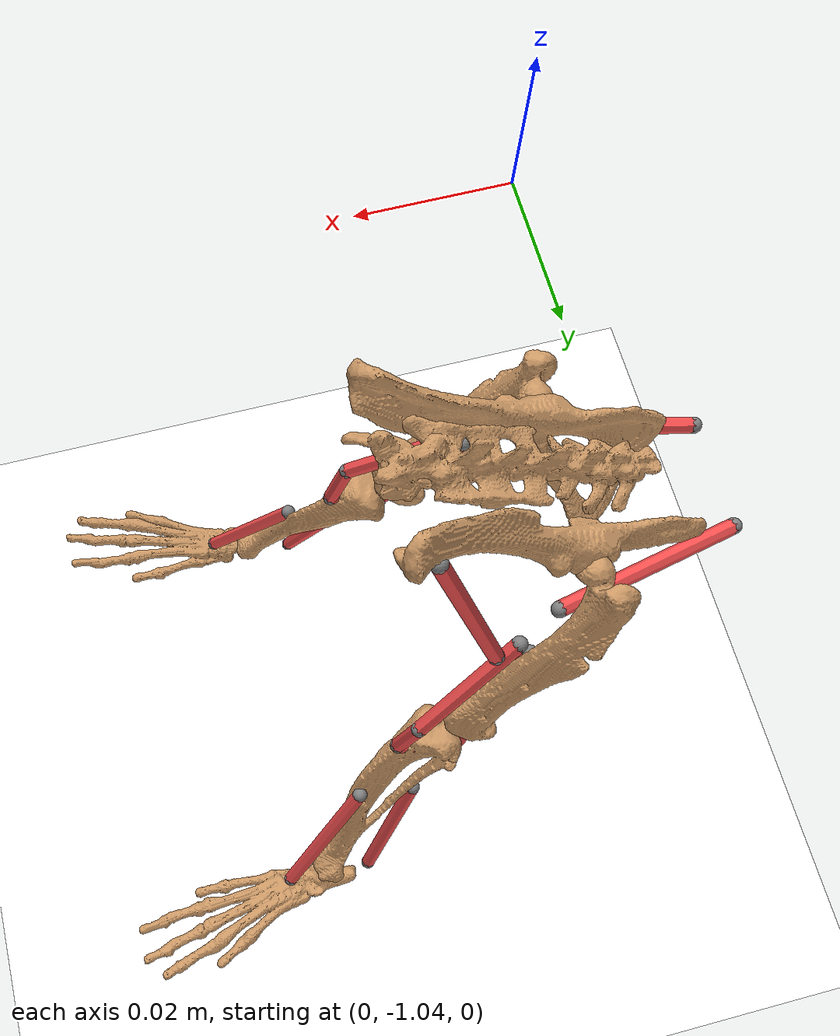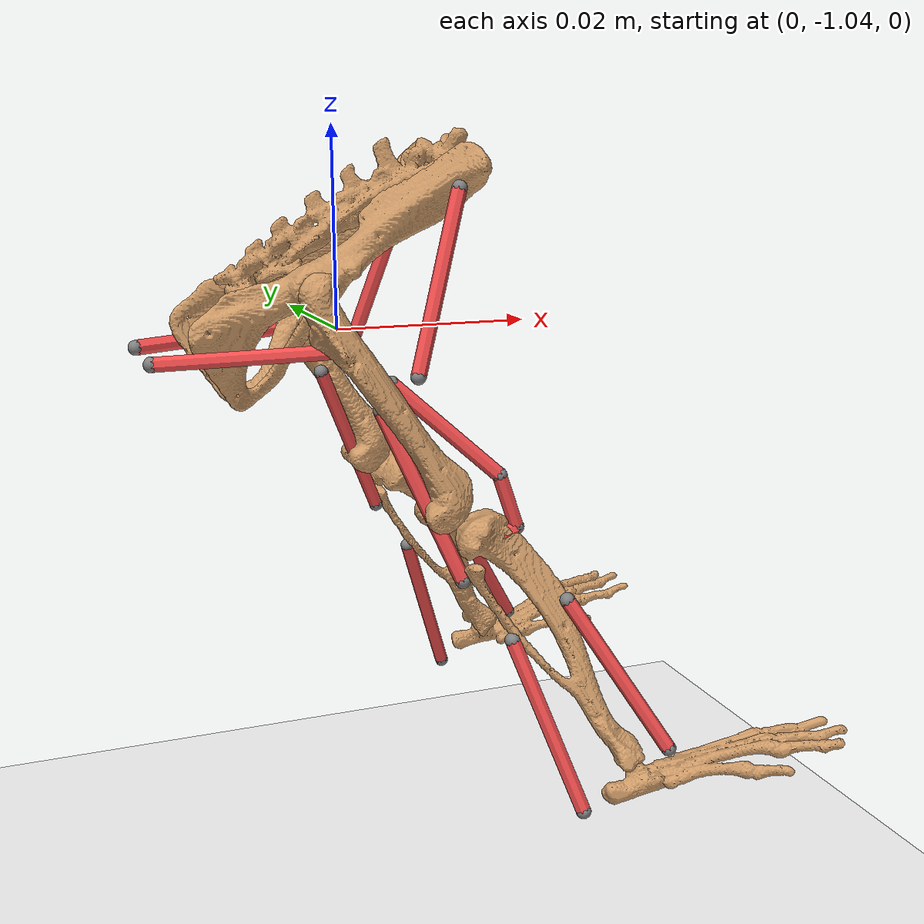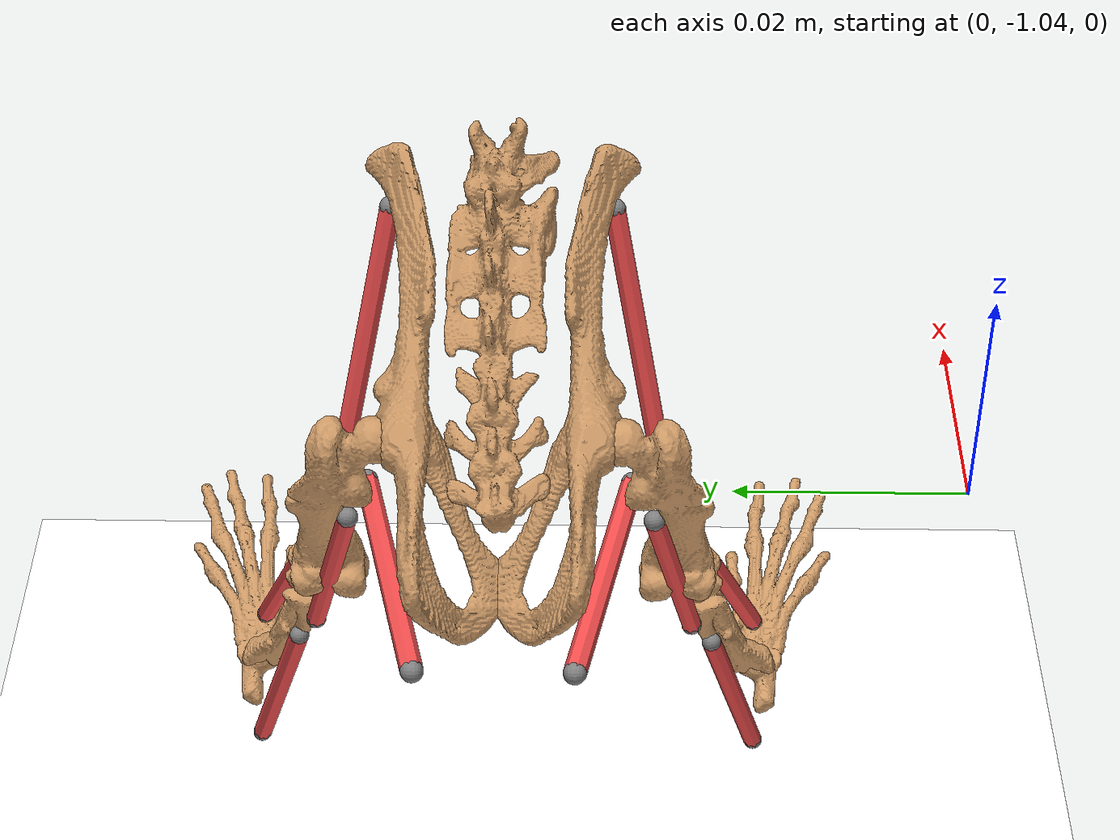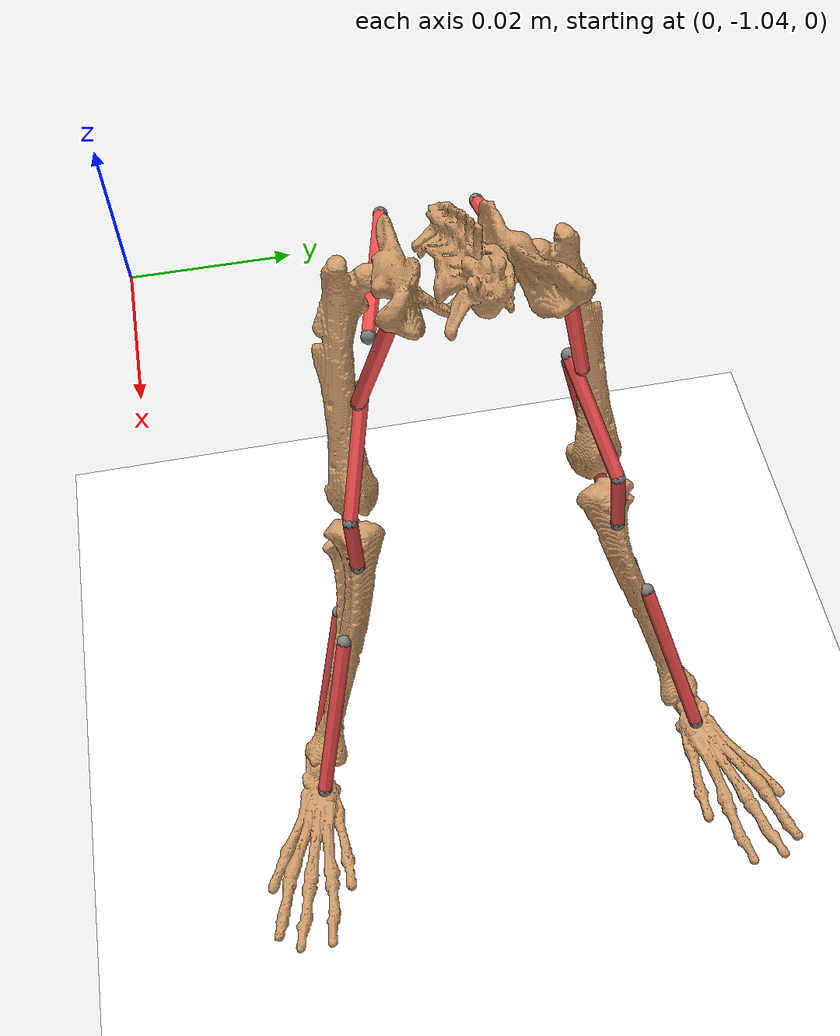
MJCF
<?xml version="1.0" encoding="utf-8"?>
<mujoco model="Rat Hindlimb Right">
  <compiler inertiafromgeom="auto" angle="radian" balanceinertia="true" boundmass="0.001" boundinertia="0.001">
    <lengthrange inttotal="50" useexisting="true"></lengthrange>
  </compiler>
  <default>
    <joint limited="true" damping="0.5" armature="0.1" stiffness="2"></joint>
    <geom rgba="0.8 0.6 .4 1" margin="0.001"></geom>
    <site size="0.001"></site>
    <tendon width="0.001" rgba=".95 .3 .3 1" limited="false"></tendon>
    <default class="muscle">
      <muscle ctrllimited="true" ctrlrange="0 1" ></muscle>
    </default>
    <default class="motor">
      <general gainprm="5 0 0 0 0 0 0 0 0 0"></general>
    </default>
  </default>
  <size njmax="1000" nconmax="400" nuser_jnt="1"></size>
  <worldbody>
    <geom name="floor" pos="0 0 -0.09" size="10 10 0.125" type="plane" material="MatPlane" rgba="1 1 1 1" condim="3" friction="-10 0.005 0.0001"></geom>
    <camera name="for_video" pos="0.1 -1.4 0.02" xyaxes="1 0 0 0 1 3"/>

    <body name="spine" pos="       0     -1.0 0" quat="0.6830126 0.6830126 -0.1830131 0.1830131">
      <joint name="hip_flx_translation1" type="slide" pos="0 0 0" axis="       1        0        0" limited="true" range="-1 1" ref="0" damping="0" stiffness="0" armature="0"></joint>
      <joint name="hip_flx_translation2" type="slide" pos="0 0 0" axis="       0       1        0" limited="true" range="-0.04 0.1" ref="0" damping="0" stiffness="0" armature="0"></joint>
      <joint name="hip_flx_translation3" type="slide" pos="0 0 0" axis="       0       0       1 " limited="true" range="-0.04 1.5" ref="0" damping="0" stiffness="0" armature="0"></joint>
      <joint name="hip_flx_rot" type="hinge" pos="0 0 0" axis="       0       0       1 " limited="true" range="-0.4 0.0" ref="0" damping="0" stiffness="0" armature="0"></joint>
      <light mode="trackcom" directional="false" pos="0 0 4.0" dir="0 0 -1"></light>
      <geom name="spine" type="mesh" mesh="spine"></geom>
      <inertial pos="       0        0        0" mass="0.01" fullinertia=" 4.8e-06  4.8e-06  4.8e-06        0        0        0"></inertial>

      <body name="L_pelvis" pos="  0.005   -0.003     -0.01" quat=" 0.0 0 0.707108 0  ">
        <geom name="L_pelvis" type="mesh" mesh="L_pelvis"></geom>
        <inertial pos="       0        0        0" mass="0.0159" fullinertia="   4e-06  3.5e-06  3.5e-06        0        0        0"></inertial>
        <site name="L_Hip_ext1" pos="0.021056  0.0028983  -0.003217"></site>
        <site name="L_Hip_flx1" pos="-0.022092 0.0013009 0.000"></site>

        <body name="L_femur" pos=" 0 0 -0" quat="0.9914448 -0.1305265 0 0">
          <geom name="L_femur" type="mesh" mesh="L_femur"></geom>
          <inertial pos="       0   -0.015        0" mass="0.014141" fullinertia="1.62e-06  2.5e-07 1.62e-06        0        0        0"></inertial>
          <site name="L_Hip_ext2" pos="0.000552  -0.007969  -0.0001961"></site>
          <site name="L_Hip_flx2" pos="-0.004624 -.01523 0.000701"></site>
          <site name="L_Knee_ext1" pos="-0.00145392895126  -0.014089113889328  0" />
          <site name="L_Knee_ext2" pos="-0.00645392895126  -0.031089113889328  0" />
          <site name="L_Knee_ext3" pos="-0.005  -0.038089113889328  -0.002" />
          <site name="L_Knee_flx1" pos="0.00145392895126  -0.016089113889328  0.00" />
          <joint name="L_hip_flx" type="hinge" pos="0 0 0" axis="       0        0        1" limited="true" range="-1.072665  1.22173" ref="0"></joint>

          <body name="L_tibia" pos="  -0.0001    -0.07251  -0.0015" quat="1.0 0.0 0.0 0.0">
            <geom name="L_tibia" type="mesh" mesh="L_tibia"></geom>
            <inertial pos="       0    0.015        0" mass="0.003338" fullinertia="1.62e-06  2.5e-07 1.62e-06        0        0        0"></inertial>
            <site name="L_Knee_ext4" pos="-0.002   0.034856932063886  0" />
            <site name="L_Knee_flx2" pos="0.004505339894322   0.032856932063886  0.0" />

            <site name="L_Ankle_ext1" pos="0.003505339894322   0.022856932063886  0.0" />
            <site name="L_Ankle_flx1" pos="-0.0052505339894322   0.022856932063886  0.0" />
            <joint name="L_knee_flx" type="hinge" pos="0.003 0.038 0" axis="       0        0        -1" limited="true" range="-2.0 -1.0" ref="0"></joint>

            <body name="L_foot" pos="       0        0        0" quat="1.0 0.0 0.0 0.0">
              <geom name="L_foot" type="mesh" mesh="L_foot" friction="-10 0.005 0.0001"></geom>
              <inertial pos="   0.007   -0.005        0" mass="0.001571" fullinertia=" 2.5e-07 1.62e-06 1.62e-06        0        0        0"></inertial>

              <site name="L_Ankle_ext2" pos=" 0.008177772979046  -0.001076102178830  -0.000251508702143" />
              <site name="L_Ankle_flx2" pos="-0.005604146904590  -0.001287973765483  0.0" />
              <joint name="L_ankle_flx" type="hinge" pos="0 0 0" axis="       0        0        -1" limited="true" range="0.2   1.4" ref="0"></joint>
            </body>

          </body>

        </body>
      </body>

      <body name="R_pelvis" pos="   0.005   -0.003     0.01" quat="1.0 0.0 0.0 0.0">
        <geom name="R_pelvis" type="mesh" mesh="R_pelvis"></geom>
        <inertial pos="       0        0        0" mass="0.0159" fullinertia="   4e-06  3.5e-06  3.5e-06        0        0        0"></inertial>

        <site name="R_Hip_ext1" pos="-0.021056  0.0028983  -0.003217"></site>
        <site name="R_Hip_flx1" pos="0.022092 0.0013009 0.000"></site>

        <body name="R_femur" pos="       0        0        0" quat="0.9914448 -0.1305265 0 0">
          <geom name="R_femur" type="mesh" mesh="R_femur"></geom>
          <inertial pos="       0   -0.015        0" mass="0.014141" fullinertia="1.62e-06  2.5e-07 1.62e-06        0        0        0"></inertial>
          <site name="R_Hip_ext2" pos="-0.000552  -0.007969  -0.0001961"></site>
          <site name="R_Hip_flx2" pos=".004624 -.01523 0.000701"></site>

          <site name="R_Knee_ext1" pos="0.00145392895126  -0.014089113889328  0" />
          <site name="R_Knee_ext2" pos="0.00645392895126  -0.031089113889328  0" />
          <site name="R_Knee_ext3" pos="0.005  -0.038089113889328  -0.002" />

          <site name="R_Knee_flx1" pos="-0.00145392895126  -0.016089113889328  0.00" />
          <joint name="R_hip_flx" type="hinge" pos="0 0 0" axis="       0        0        -1" limited="true" range="-1.072665  1.22173" ref="0"></joint>

          <body name="R_tibia" pos="  -0.0001    -0.07251  -0.0015" quat="1.0 0.0 0.0 0.0">
            <geom name="R_tibia" type="mesh" mesh="R_tibia"></geom>
            <inertial pos="       0    0.015        0" mass="0.003338" fullinertia="1.62e-06  2.5e-07 1.62e-06        0        0        0"></inertial>

            <site name="R_Knee_ext4" pos="0.002   0.034856932063886  0" />
            <site name="R_Knee_flx2" pos="-0.004505339894322   0.032856932063886  0.0" />
            <site name="R_Ankle_ext1" pos="-0.003505339894322   0.022856932063886  0.0" />
            <site name="R_Ankle_flx1" pos="0.0052505339894322   0.022856932063886  0.0" />
            <joint name="R_knee_flx" type="hinge" pos="-0.003 0.038 0" axis="       0        0        1" limited="true" range="-2.0 -1.0" ref="0"></joint>

            <body name="R_foot" pos="       0        0        0" quat="1.0 0.0 0.0 0.0">
              <geom name="R_foot" type="mesh" mesh="R_foot" friction="-10 0.005 0.0001"></geom>
              <inertial pos="   0.007   -0.005        0" mass="0.001571" fullinertia=" 2.5e-07 1.62e-06 1.62e-06        0        0        0"></inertial>
              <site name="R_Ankle_ext2" pos=" -0.008177772979046  -0.001076102178830  -0.000251508702143" />
              <site name="R_Ankle_flx2" pos="0.005604146904590  -0.001287973765483  0.0" />
              <joint name="R_ankle_flx" type="hinge" pos="0 0 0" axis="       0        0        1" limited="true" range="0.2   1.4" ref="0"></joint>
            </body>

          </body>

        </body>

      </body>

    </body>

    <camera name="for_testing" pos="0 0 0" euler="0 0 0"></camera>
  </worldbody>

  <asset>
    <mesh name="spine" file="Geometry/spine.stl" scale="       1        1        1"></mesh>
    <mesh name="R_pelvis" file="Geometry/pelvis.stl" scale="       1        1        1"></mesh>
    <mesh name="R_femur" file="Geometry/femur.stl" scale="       1        1        1"></mesh>
    <mesh name="R_tibia" file="Geometry/tibia.stl" scale="       1        1        1"></mesh>
    <mesh name="R_foot" file="Geometry/foot.stl" scale="       1        1        1"></mesh>
    <mesh name="L_pelvis" file="Geometry/pelvis.stl" scale="       -1        1        1"></mesh>
    <mesh name="L_femur" file="Geometry/femur.stl" scale="       -1        1        1"></mesh>
    <mesh name="L_tibia" file="Geometry/tibia.stl" scale="       -1        1        1"></mesh>
    <mesh name="L_foot" file="Geometry/foot.stl" scale="       -1        1        1"></mesh>

    <texture name="texplane" type="2d" builtin="checker" rgb1=".8 .8 .8" rgb2=".6 .6 .6" width="100" height="100"></texture>
    <material name="MatPlane" reflectance="0.0" texture="texplane" texrepeat="15 15" texuniform="true"></material>
    <texture type="skybox" builtin="gradient" rgb1="1 1 1" rgb2="1 1 1" width="256" height="256" />
  </asset>

  <tendon>
    <spatial name="R_hip_Ext_tendon">
      <site site="R_Hip_ext1"></site>
      <site site="R_Hip_ext2"></site>
    </spatial>
    <spatial name="R_hip_Flx_tendon">
      <site site="R_Hip_flx1"></site>
      <site site="R_Hip_flx2"></site>
    </spatial>
    <spatial name="R_knee_Ext_tendon">
      <site site="R_Knee_ext1"></site>
      <site site="R_Knee_ext2"></site>
      <site site="R_Knee_ext3"></site>
      <site site="R_Knee_ext4"></site>
    </spatial>
    <spatial name="R_knee_Flx_tendon">
      <site site="R_Knee_flx1"></site>
      <site site="R_Knee_flx2"></site>
    </spatial>
    <spatial name="R_ankle_Ext_tendon">
      <site site="R_Ankle_ext1"></site>
      <site site="R_Ankle_ext2"></site>
    </spatial>
    <spatial name="R_ankle_Flx_tendon">
      <site site="R_Ankle_flx1"></site>
      <site site="R_Ankle_flx2"></site>
    </spatial>

    <spatial name="L_hip_Ext_tendon">
      <site site="L_Hip_ext1"></site>
      <site site="L_Hip_ext2"></site>
    </spatial>
    <spatial name="L_hip_Flx_tendon">
      <site site="L_Hip_flx1"></site>
      <site site="L_Hip_flx2"></site>
    </spatial>
    <spatial name="L_knee_Ext_tendon">
      <site site="L_Knee_ext1"></site>
      <site site="L_Knee_ext2"></site>
      <site site="L_Knee_ext3"></site>
      <site site="L_Knee_ext4"></site>
    </spatial>
    <spatial name="L_knee_Flx_tendon">
      <site site="L_Knee_flx1"></site>
      <site site="L_Knee_flx2"></site>
    </spatial>
    <spatial name="L_ankle_Ext_tendon">
      <site site="L_Ankle_ext1"></site>
      <site site="L_Ankle_ext2"></site>
    </spatial>
    <spatial name="L_ankle_Flx_tendon">
      <site site="L_Ankle_flx1"></site>
      <site site="L_Ankle_flx2"></site>
    </spatial>
  </tendon>

  <actuator>
    <muscle name="R_hip_Extensor" tendon="R_hip_Ext_tendon" class="muscle"/>
    <muscle name="R_hip_Flexor" tendon="R_hip_Flx_tendon" class="muscle"/>
    <muscle name="R_knee_Extensor" tendon="R_knee_Ext_tendon" class="muscle"/>
    <muscle name="R_knee_Flexor" tendon="R_knee_Flx_tendon" class="muscle"/>
    <muscle name="R_ankle_Extensor" tendon="R_ankle_Ext_tendon" class="muscle" />
    <muscle name="R_ankle_Flexor" tendon="R_ankle_Flx_tendon" class="muscle"/>

    <muscle name="L_hip_Extensor" tendon="L_hip_Ext_tendon" class="muscle"/>
    <muscle name="L_hip_Flexor" tendon="L_hip_Flx_tendon" class="muscle"/>
    <muscle name="L_knee_Extensor" tendon="L_knee_Ext_tendon" class="muscle"/>
    <muscle name="L_knee_Flexor" tendon="L_knee_Flx_tendon" class="muscle"/>
    <muscle name="L_ankle_Extensor" tendon="L_ankle_Ext_tendon" class="muscle"/>
    <muscle name="L_ankle_Flexor" tendon="L_ankle_Flx_tendon" class="muscle"/>
  </actuator>

</mujoco>
